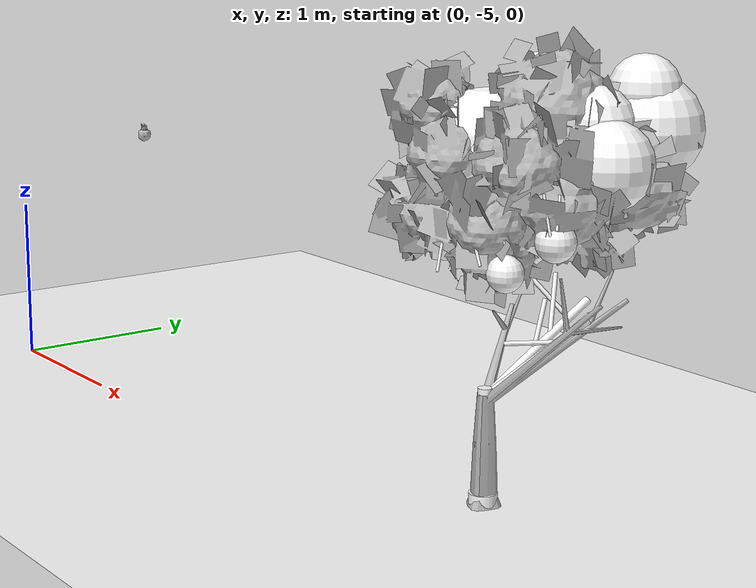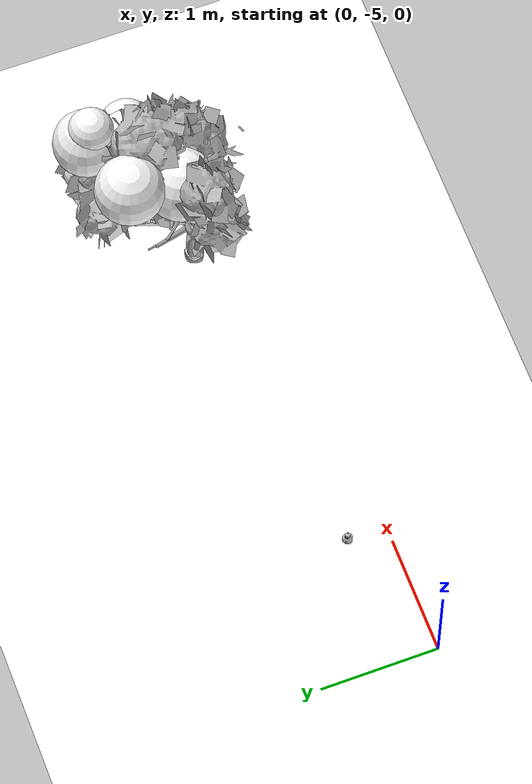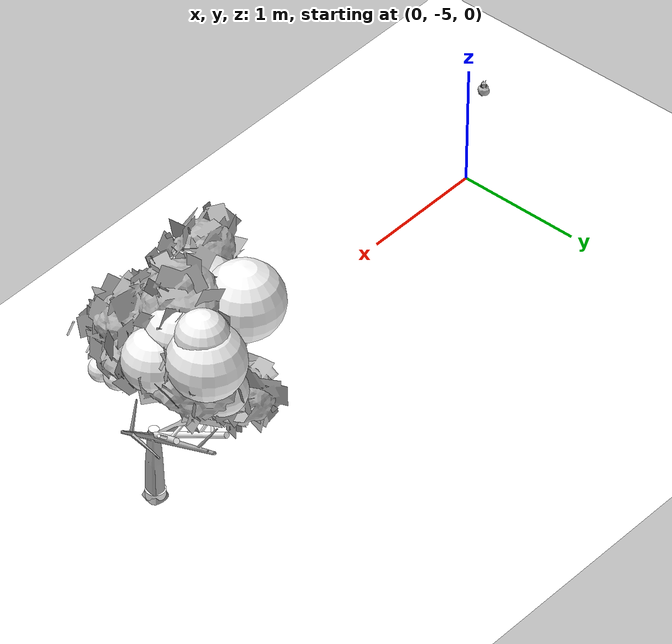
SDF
<sdf version="1.11">
 <world name="peach_orchard">
  <model name="ground">
   <static>true</static>
   <link name="link">
    <visual name="soil">
     <geometry><plane><normal>0 0 1</normal><size>32 22</size></plane></geometry>
     <material>
      <ambient>1 1 1 1</ambient>
      <diffuse>1 1 1 1</diffuse>
      <specular>0.1 0.1 0.1 1</specular>
      <pbr>
       <metal>
        <albedo_map>textures/soil_albedo.png</albedo_map>
        <normal_map type="tangent">textures/soil_normal.png</normal_map>
        <roughness>0.95</roughness>
        <metalness>0</metalness>
       </metal>
      </pbr>
     </material>
    </visual>
    <collision name="c_soil">
     <geometry><plane><normal>0 0 1</normal><size>32 22</size></plane></geometry>
    </collision>
   </link>
  </model>
  <model name="tree_r3_t1">
   <pose>4 -4.4 0 0 0 0</pose>
   <static>true</static>
   <link name="link">
    <visual name="tree_mesh">
     <pose>0 0 0 0 0 -0.274264</pose>
     <geometry>
      <mesh><uri>model://peach_sim/meshes/peach_tree_b.glb</uri><scale>1.02439 1.02439 1.02439</scale></mesh>
     </geometry>
    </visual>
    <visual name="trunk_0">
     <pose>0 0 0.171645 0 0 0</pose>
     <geometry><cylinder><radius>0.0518367</radius><length>0.343291</length></cylinder></geometry>
     <material>
      <ambient>1 1 1 1</ambient>
      <diffuse>1 1 1 1</diffuse>
      <specular>0.1 0.1 0.1 1</specular>
      <pbr>
       <metal>
        <albedo_map>textures/bark_albedo.png</albedo_map>
        <normal_map type="tangent">textures/bark_normal.png</normal_map>
        <roughness>0.9</roughness>
        <metalness>0</metalness>
       </metal>
      </pbr>
     </material>
    </visual>
    <collision name="c_trunk_0">
     <pose>0 0 0.171645 0 0 0</pose>
     <geometry><cylinder><radius>0.0518367</radius><length>0.343291</length></cylinder></geometry>
    </collision>
    <visual name="trunk_1">
     <pose>0 0 0.483728 0 0 0</pose>
     <geometry><cylinder><radius>0.0373225</radius><length>0.280874</length></cylinder></geometry>
     <material>
      <ambient>1 1 1 1</ambient>
      <diffuse>1 1 1 1</diffuse>
      <specular>0.1 0.1 0.1 1</specular>
      <pbr>
       <metal>
        <albedo_map>textures/bark_albedo.png</albedo_map>
        <normal_map type="tangent">textures/bark_normal.png</normal_map>
        <roughness>0.9</roughness>
        <metalness>0</metalness>
       </metal>
      </pbr>
     </material>
    </visual>
    <collision name="c_trunk_1">
     <pose>0 0 0.483728 0 0 0</pose>
     <geometry><cylinder><radius>0.0373225</radius><length>0.280874</length></cylinder></geometry>
    </collision>
    <visual name="root_flare">
     <pose>0 0 0.035 0 0 0</pose>
     <geometry><cylinder><radius>0.0751633</radius><length>0.07</length></cylinder></geometry>
     <material>
      <ambient>1 1 1 1</ambient>
      <diffuse>1 1 1 1</diffuse>
      <specular>0.1 0.1 0.1 1</specular>
      <pbr>
       <metal>
        <albedo_map>textures/bark_albedo.png</albedo_map>
        <normal_map type="tangent">textures/bark_normal.png</normal_map>
        <roughness>0.95</roughness>
        <metalness>0</metalness>
       </metal>
      </pbr>
     </material>
    </visual>
    <visual name="scaffold_0">
     <pose>0.00289766 0.339263 0.77872 0 1.02838 1.56226</pose>
     <geometry><cylinder><radius>0.022</radius><length>0.79227</length></cylinder></geometry>
     <material>
      <ambient>1 1 1 1</ambient>
      <diffuse>1 1 1 1</diffuse>
      <specular>0.1 0.1 0.1 1</specular>
      <pbr>
       <metal>
        <albedo_map>textures/bark_albedo.png</albedo_map>
        <normal_map type="tangent">textures/bark_normal.png</normal_map>
        <roughness>0.9</roughness>
        <metalness>0</metalness>
       </metal>
      </pbr>
     </material>
    </visual>
    <collision name="c_scaffold_0">
     <pose>0.00289766 0.339263 0.77872 0 1.02838 1.56226</pose>
     <geometry><cylinder><radius>0.022</radius><length>0.79227</length></cylinder></geometry>
    </collision>
    <visual name="branchlet_0_0">
     <pose>-0.0442807 0.482448 0.978648 0 0.469249 2.25915</pose>
     <geometry><cylinder><radius>0.012</radius><length>0.333502</length></cylinder></geometry>
     <material>
      <ambient>1 1 1 1</ambient>
      <diffuse>1 1 1 1</diffuse>
      <specular>0.1 0.1 0.1 1</specular>
      <pbr>
       <metal>
        <albedo_map>textures/bark_albedo.png</albedo_map>
        <normal_map type="tangent">textures/bark_normal.png</normal_map>
        <roughness>0.9</roughness>
        <metalness>0</metalness>
       </metal>
      </pbr>
     </material>
    </visual>
    <visual name="branchlet_0_1">
     <pose>-0.0696718 0.480406 1.01129 0 0.76341 -2.39416</pose>
     <geometry><cylinder><radius>0.012</radius><length>0.293297</length></cylinder></geometry>
     <material>
      <ambient>1 1 1 1</ambient>
      <diffuse>1 1 1 1</diffuse>
      <specular>0.1 0.1 0.1 1</specular>
      <pbr>
       <metal>
        <albedo_map>textures/bark_albedo.png</albedo_map>
        <normal_map type="tangent">textures/bark_normal.png</normal_map>
        <roughness>0.9</roughness>
        <metalness>0</metalness>
       </metal>
      </pbr>
     </material>
    </visual>
    <visual name="branchlet_0_2">
     <pose>-0.0208308 0.372808 0.88952 0 0.457532 1.96377</pose>
     <geometry><cylinder><radius>0.012</radius><length>0.278203</length></cylinder></geometry>
     <material>
      <ambient>1 1 1 1</ambient>
      <diffuse>1 1 1 1</diffuse>
      <specular>0.1 0.1 0.1 1</specular>
      <pbr>
       <metal>
        <albedo_map>textures/bark_albedo.png</albedo_map>
        <normal_map type="tangent">textures/bark_normal.png</normal_map>
        <roughness>0.9</roughness>
        <metalness>0</metalness>
       </metal>
      </pbr>
     </material>
    </visual>
    <visual name="scaffold_1">
     <pose>0.127383 0.225426 0.768518 0 0.927069 1.05645</pose>
     <geometry><cylinder><radius>0.022</radius><length>0.647427</length></cylinder></geometry>
     <material>
      <ambient>1 1 1 1</ambient>
      <diffuse>1 1 1 1</diffuse>
      <specular>0.1 0.1 0.1 1</specular>
      <pbr>
       <metal>
        <albedo_map>textures/bark_albedo.png</albedo_map>
        <normal_map type="tangent">textures/bark_normal.png</normal_map>
        <roughness>0.9</roughness>
        <metalness>0</metalness>
       </metal>
      </pbr>
     </material>
    </visual>
    <collision name="c_scaffold_1">
     <pose>0.127383 0.225426 0.768518 0 0.927069 1.05645</pose>
     <geometry><cylinder><radius>0.022</radius><length>0.647427</length></cylinder></geometry>
    </collision>
    <visual name="branchlet_1_0">
     <pose>0.032887 0.274121 0.821553 0 1.75925 -2.83323</pose>
     <geometry><cylinder><radius>0.012</radius><length>0.317949</length></cylinder></geometry>
     <material>
      <ambient>1 1 1 1</ambient>
      <diffuse>1 1 1 1</diffuse>
      <specular>0.1 0.1 0.1 1</specular>
      <pbr>
       <metal>
        <albedo_map>textures/bark_albedo.png</albedo_map>
        <normal_map type="tangent">textures/bark_normal.png</normal_map>
        <roughness>0.9</roughness>
        <metalness>0</metalness>
       </metal>
      </pbr>
     </material>
    </visual>
    <visual name="branchlet_1_1">
     <pose>0.250135 0.326126 0.918407 0 0.785515 0.467795</pose>
     <geometry><cylinder><radius>0.012</radius><length>0.292</length></cylinder></geometry>
     <material>
      <ambient>1 1 1 1</ambient>
      <diffuse>1 1 1 1</diffuse>
      <specular>0.1 0.1 0.1 1</specular>
      <pbr>
       <metal>
        <albedo_map>textures/bark_albedo.png</albedo_map>
        <normal_map type="tangent">textures/bark_normal.png</normal_map>
        <roughness>0.9</roughness>
        <metalness>0</metalness>
       </metal>
      </pbr>
     </material>
    </visual>
    <visual name="canopy_0">
     <pose>-0.256309 0.191579 1.79882 0 0 0</pose>
     <geometry><sphere><radius>0.302093</radius></sphere></geometry>
     <material>
      <ambient>1 1 1 1</ambient>
      <diffuse>1 1 1 1</diffuse>
      <specular>0.1 0.1 0.1 1</specular>
      <pbr>
       <metal>
        <albedo_map>textures/leaf_albedo.png</albedo_map>
        <normal_map type="tangent">textures/leaf_normal.png</normal_map>
        <roughness>0.85</roughness>
        <metalness>0</metalness>
       </metal>
      </pbr>
     </material>
    </visual>
    <collision name="c_canopy_0">
     <pose>-0.256309 0.191579 1.79882 0 0 0</pose>
     <geometry><sphere><radius>0.302093</radius></sphere></geometry>
    </collision>
    <visual name="canopy_1">
     <pose>-0.0439061 0.338773 1.60584 0 0 0</pose>
     <geometry><sphere><radius>0.196177</radius></sphere></geometry>
     <material>
      <ambient>1 1 1 1</ambient>
      <diffuse>1 1 1 1</diffuse>
      <specular>0.1 0.1 0.1 1</specular>
      <pbr>
       <metal>
        <albedo_map>textures/leaf_albedo.png</albedo_map>
        <normal_map type="tangent">textures/leaf_normal.png</normal_map>
        <roughness>0.85</roughness>
        <metalness>0</metalness>
       </metal>
      </pbr>
     </material>
    </visual>
    <collision name="c_canopy_1">
     <pose>-0.0439061 0.338773 1.60584 0 0 0</pose>
     <geometry><sphere><radius>0.196177</radius></sphere></geometry>
    </collision>
    <visual name="canopy_2">
     <pose>0.209014 0.445296 1.67812 0 0 0</pose>
     <geometry><sphere><radius>0.259806</radius></sphere></geometry>
     <material>
      <ambient>1 1 1 1</ambient>
      <diffuse>1 1 1 1</diffuse>
      <specular>0.1 0.1 0.1 1</specular>
      <pbr>
       <metal>
        <albedo_map>textures/leaf_albedo.png</albedo_map>
        <normal_map type="tangent">textures/leaf_normal.png</normal_map>
        <roughness>0.85</roughness>
        <metalness>0</metalness>
       </metal>
      </pbr>
     </material>
    </visual>
    <collision name="c_canopy_2">
     <pose>0.209014 0.445296 1.67812 0 0 0</pose>
     <geometry><sphere><radius>0.259806</radius></sphere></geometry>
    </collision>
    <visual name="canopy_3">
     <pose>0.233637 0.459366 1.928 0 0 0</pose>
     <geometry><sphere><radius>0.219301</radius></sphere></geometry>
     <material>
      <ambient>1 1 1 1</ambient>
      <diffuse>1 1 1 1</diffuse>
      <specular>0.1 0.1 0.1 1</specular>
      <pbr>
       <metal>
        <albedo_map>textures/leaf_albedo.png</albedo_map>
        <normal_map type="tangent">textures/leaf_normal.png</normal_map>
        <roughness>0.85</roughness>
        <metalness>0</metalness>
       </metal>
      </pbr>
     </material>
    </visual>
    <visual name="canopy_4">
     <pose>-0.254694 0.617698 1.97712 0 0 0</pose>
     <geometry><sphere><radius>0.285564</radius></sphere></geometry>
     <material>
      <ambient>1 1 1 1</ambient>
      <diffuse>1 1 1 1</diffuse>
      <specular>0.1 0.1 0.1 1</specular>
      <pbr>
       <metal>
        <albedo_map>textures/leaf_albedo.png</albedo_map>
        <normal_map type="tangent">textures/leaf_normal.png</normal_map>
        <roughness>0.85</roughness>
        <metalness>0</metalness>
       </metal>
      </pbr>
     </material>
    </visual>
    <visual name="canopy_5">
     <pose>-0.0750322 0.104665 1.57208 0 0 0</pose>
     <geometry><sphere><radius>0.213074</radius></sphere></geometry>
     <material>
      <ambient>1 1 1 1</ambient>
      <diffuse>1 1 1 1</diffuse>
      <specular>0.1 0.1 0.1 1</specular>
      <pbr>
       <metal>
        <albedo_map>textures/leaf_albedo.png</albedo_map>
        <normal_map type="tangent">textures/leaf_normal.png</normal_map>
        <roughness>0.85</roughness>
        <metalness>0</metalness>
       </metal>
      </pbr>
     </material>
    </visual>
    <visual name="canopy_6">
     <pose>0.293414 0.743755 2.09772 0 0 0</pose>
     <geometry><sphere><radius>0.186287</radius></sphere></geometry>
     <material>
      <ambient>1 1 1 1</ambient>
      <diffuse>1 1 1 1</diffuse>
      <specular>0.1 0.1 0.1 1</specular>
      <pbr>
       <metal>
        <albedo_map>textures/leaf_albedo.png</albedo_map>
        <normal_map type="tangent">textures/leaf_normal.png</normal_map>
        <roughness>0.85</roughness>
        <metalness>0</metalness>
       </metal>
      </pbr>
     </material>
    </visual>
    <visual name="canopy_7">
     <pose>0.401951 0.409758 1.76887 0 0 0</pose>
     <geometry><sphere><radius>0.228204</radius></sphere></geometry>
     <material>
      <ambient>1 1 1 1</ambient>
      <diffuse>1 1 1 1</diffuse>
      <specular>0.1 0.1 0.1 1</specular>
      <pbr>
       <metal>
        <albedo_map>textures/leaf_albedo.png</albedo_map>
        <normal_map type="tangent">textures/leaf_normal.png</normal_map>
        <roughness>0.85</roughness>
        <metalness>0</metalness>
       </metal>
      </pbr>
     </material>
    </visual>
    <visual name="canopy_8">
     <pose>-0.112048 0.178506 1.69558 0 0 0</pose>
     <geometry><sphere><radius>0.258392</radius></sphere></geometry>
     <material>
      <ambient>1 1 1 1</ambient>
      <diffuse>1 1 1 1</diffuse>
      <specular>0.1 0.1 0.1 1</specular>
      <pbr>
       <metal>
        <albedo_map>textures/leaf_albedo.png</albedo_map>
        <normal_map type="tangent">textures/leaf_normal.png</normal_map>
        <roughness>0.85</roughness>
        <metalness>0</metalness>
       </metal>
      </pbr>
     </material>
    </visual>
    <visual name="canopy_9">
     <pose>0.297923 0.782679 1.90813 0 0 0</pose>
     <geometry><sphere><radius>0.276196</radius></sphere></geometry>
     <material>
      <ambient>1 1 1 1</ambient>
      <diffuse>1 1 1 1</diffuse>
      <specular>0.1 0.1 0.1 1</specular>
      <pbr>
       <metal>
        <albedo_map>textures/leaf_albedo.png</albedo_map>
        <normal_map type="tangent">textures/leaf_normal.png</normal_map>
        <roughness>0.85</roughness>
        <metalness>0</metalness>
       </metal>
      </pbr>
     </material>
    </visual>
    <visual name="canopy_10">
     <pose>0.21302 0.827895 1.62863 0 0 0</pose>
     <geometry><sphere><radius>0.187573</radius></sphere></geometry>
     <material>
      <ambient>1 1 1 1</ambient>
      <diffuse>1 1 1 1</diffuse>
      <specular>0.1 0.1 0.1 1</specular>
      <pbr>
       <metal>
        <albedo_map>textures/leaf_albedo.png</albedo_map>
        <normal_map type="tangent">textures/leaf_normal.png</normal_map>
        <roughness>0.85</roughness>
        <metalness>0</metalness>
       </metal>
      </pbr>
     </material>
    </visual>
    <visual name="foliage_0">
     <pose>0.292851 0.172828 1.44235 0 0 0</pose>
     <geometry><sphere><radius>0.100819</radius></sphere></geometry>
     <material>
      <ambient>1 1 1 1</ambient>
      <diffuse>1 1 1 1</diffuse>
      <specular>0.1 0.1 0.1 1</specular>
      <pbr>
       <metal>
        <albedo_map>textures/leaf_albedo.png</albedo_map>
        <normal_map type="tangent">textures/leaf_normal.png</normal_map>
        <roughness>0.85</roughness>
        <metalness>0</metalness>
       </metal>
      </pbr>
     </material>
    </visual>
    <visual name="foliage_4">
     <pose>0.319777 -0.162363 1.29351 0 0 0</pose>
     <geometry><sphere><radius>0.0923238</radius></sphere></geometry>
     <material>
      <ambient>1 1 1 1</ambient>
      <diffuse>1 1 1 1</diffuse>
      <specular>0.1 0.1 0.1 1</specular>
      <pbr>
       <metal>
        <albedo_map>textures/leaf_albedo.png</albedo_map>
        <normal_map type="tangent">textures/leaf_normal.png</normal_map>
        <roughness>0.85</roughness>
        <metalness>0</metalness>
       </metal>
      </pbr>
     </material>
    </visual>
    <visual name="foliage_8">
     <pose>0.405764 0.0756243 1.43289 0 0 0</pose>
     <geometry><sphere><radius>0.102441</radius></sphere></geometry>
     <material>
      <ambient>1 1 1 1</ambient>
      <diffuse>1 1 1 1</diffuse>
      <specular>0.1 0.1 0.1 1</specular>
      <pbr>
       <metal>
        <albedo_map>textures/leaf_albedo.png</albedo_map>
        <normal_map type="tangent">textures/leaf_normal.png</normal_map>
        <roughness>0.85</roughness>
        <metalness>0</metalness>
       </metal>
      </pbr>
     </material>
    </visual>
    <visual name="twig_0">
     <pose>0.205774 0.106351 1.49683 0 0.663417 2.88604</pose>
     <geometry><cylinder><radius>0.007</radius><length>0.124763</length></cylinder></geometry>
     <material>
      <ambient>1 1 1 1</ambient>
      <diffuse>1 1 1 1</diffuse>
      <specular>0.1 0.1 0.1 1</specular>
      <pbr>
       <metal>
        <albedo_map>textures/bark_albedo.png</albedo_map>
        <normal_map type="tangent">textures/bark_normal.png</normal_map>
        <roughness>0.9</roughness>
        <metalness>0</metalness>
       </metal>
      </pbr>
     </material>
    </visual>
    <visual name="twig_1">
     <pose>0.214461 0.266923 1.56384 0 0.302849 2.27051</pose>
     <geometry><cylinder><radius>0.007</radius><length>0.131819</length></cylinder></geometry>
     <material>
      <ambient>1 1 1 1</ambient>
      <diffuse>1 1 1 1</diffuse>
      <specular>0.1 0.1 0.1 1</specular>
      <pbr>
       <metal>
        <albedo_map>textures/bark_albedo.png</albedo_map>
        <normal_map type="tangent">textures/bark_normal.png</normal_map>
        <roughness>0.9</roughness>
        <metalness>0</metalness>
       </metal>
      </pbr>
     </material>
    </visual>
    <visual name="twig_2">
     <pose>0.184167 0.33763 1.5554 0 0.497607 2.74283</pose>
     <geometry><cylinder><radius>0.007</radius><length>0.118496</length></cylinder></geometry>
     <material>
      <ambient>1 1 1 1</ambient>
      <diffuse>1 1 1 1</diffuse>
      <specular>0.1 0.1 0.1 1</specular>
      <pbr>
       <metal>
        <albedo_map>textures/bark_albedo.png</albedo_map>
        <normal_map type="tangent">textures/bark_normal.png</normal_map>
        <roughness>0.9</roughness>
        <metalness>0</metalness>
       </metal>
      </pbr>
     </material>
    </visual>
    <visual name="twig_3">
     <pose>0.167816 0.442507 1.57155 0 0.519638 2.70865</pose>
     <geometry><cylinder><radius>0.007</radius><length>0.160114</length></cylinder></geometry>
     <material>
      <ambient>1 1 1 1</ambient>
      <diffuse>1 1 1 1</diffuse>
      <specular>0.1 0.1 0.1 1</specular>
      <pbr>
       <metal>
        <albedo_map>textures/bark_albedo.png</albedo_map>
        <normal_map type="tangent">textures/bark_normal.png</normal_map>
        <roughness>0.9</roughness>
        <metalness>0</metalness>
       </metal>
      </pbr>
     </material>
    </visual>
    <visual name="twig_4">
     <pose>0.307032 -0.205042 1.51033 0 0.549772 -2.73981</pose>
     <geometry><cylinder><radius>0.007</radius><length>0.180641</length></cylinder></geometry>
     <material>
      <ambient>1 1 1 1</ambient>
      <diffuse>1 1 1 1</diffuse>
      <specular>0.1 0.1 0.1 1</specular>
      <pbr>
       <metal>
        <albedo_map>textures/bark_albedo.png</albedo_map>
        <normal_map type="tangent">textures/bark_normal.png</normal_map>
        <roughness>0.9</roughness>
        <metalness>0</metalness>
       </metal>
      </pbr>
     </material>
    </visual>
    <visual name="twig_5">
     <pose>0.267612 -0.298167 1.40899 0 0.594464 2.88743</pose>
     <geometry><cylinder><radius>0.007</radius><length>0.151281</length></cylinder></geometry>
     <material>
      <ambient>1 1 1 1</ambient>
      <diffuse>1 1 1 1</diffuse>
      <specular>0.1 0.1 0.1 1</specular>
      <pbr>
       <metal>
        <albedo_map>textures/bark_albedo.png</albedo_map>
        <normal_map type="tangent">textures/bark_normal.png</normal_map>
        <roughness>0.9</roughness>
        <metalness>0</metalness>
       </metal>
      </pbr>
     </material>
    </visual>
    <visual name="twig_6">
     <pose>0.251007 -0.506691 1.40582 0 0.343851 2.01015</pose>
     <geometry><cylinder><radius>0.007</radius><length>0.136682</length></cylinder></geometry>
     <material>
      <ambient>1 1 1 1</ambient>
      <diffuse>1 1 1 1</diffuse>
      <specular>0.1 0.1 0.1 1</specular>
      <pbr>
       <metal>
        <albedo_map>textures/bark_albedo.png</albedo_map>
        <normal_map type="tangent">textures/bark_normal.png</normal_map>
        <roughness>0.9</roughness>
        <metalness>0</metalness>
       </metal>
      </pbr>
     </material>
    </visual>
    <visual name="twig_7">
     <pose>0.44589 -0.0214821 1.58144 0 0.224805 -2.96281</pose>
     <geometry><cylinder><radius>0.007</radius><length>0.203871</length></cylinder></geometry>
     <material>
      <ambient>1 1 1 1</ambient>
      <diffuse>1 1 1 1</diffuse>
      <specular>0.1 0.1 0.1 1</specular>
      <pbr>
       <metal>
        <albedo_map>textures/bark_albedo.png</albedo_map>
        <normal_map type="tangent">textures/bark_normal.png</normal_map>
        <roughness>0.9</roughness>
        <metalness>0</metalness>
       </metal>
      </pbr>
     </material>
    </visual>
    <visual name="twig_8">
     <pose>0.47425 0.0242874 1.59097 0 0.281735 2.21502</pose>
     <geometry><cylinder><radius>0.007</radius><length>0.17044</length></cylinder></geometry>
     <material>
      <ambient>1 1 1 1</ambient>
      <diffuse>1 1 1 1</diffuse>
      <specular>0.1 0.1 0.1 1</specular>
      <pbr>
       <metal>
        <albedo_map>textures/bark_albedo.png</albedo_map>
        <normal_map type="tangent">textures/bark_normal.png</normal_map>
        <roughness>0.9</roughness>
        <metalness>0</metalness>
       </metal>
      </pbr>
     </material>
    </visual>
    <visual name="twig_9">
     <pose>0.503217 0.0903975 1.56831 0 0.278915 -2.61307</pose>
     <geometry><cylinder><radius>0.007</radius><length>0.126308</length></cylinder></geometry>
     <material>
      <ambient>1 1 1 1</ambient>
      <diffuse>1 1 1 1</diffuse>
      <specular>0.1 0.1 0.1 1</specular>
      <pbr>
       <metal>
        <albedo_map>textures/bark_albedo.png</albedo_map>
        <normal_map type="tangent">textures/bark_normal.png</normal_map>
        <roughness>0.9</roughness>
        <metalness>0</metalness>
       </metal>
      </pbr>
     </material>
    </visual>
   </link>
  </model>
  <model name="peach_tree_r2_t1_00">
   <pose>0.55 -4.40365 1.45 0 0.0213078 -0.628433</pose>
   <static>true</static>
   <link name="bag">
    <visual name="bag_mesh">
     <pose>0 0 0.0468047 0 0 -0</pose>
     <geometry>
      <mesh><uri>model://peach_sim/meshes/bagged_peach.glb</uri><scale>0.982187 1.18294 1.06374</scale></mesh>
     </geometry>
    </visual>
    <visual name="body">
     <pose>0 0 0.0288047 0 0 0</pose>
     <geometry><ellipsoid><radii>0.036832 0.0307564 0.031109</radii></ellipsoid></geometry>
     <material>
      <ambient>1 1 1 1</ambient>
      <diffuse>1 1 1 1</diffuse>
      <specular>0.1 0.1 0.1 1</specular>
      <pbr>
       <metal>
        <albedo_map>textures/paper_bag_albedo.png</albedo_map>
        <normal_map type="tangent">textures/paper_bag_normal.png</normal_map>
        <roughness>0.72</roughness>
        <metalness>0</metalness>
       </metal>
      </pbr>
     </material>
    </visual>
    <visual name="bottom_fold">
     <pose>0 0 0.012 0 0 0.35</pose>
     <geometry><box><size>0.0570896 0.0353698 0.022</size></box></geometry>
     <material>
      <ambient>1 1 1 1</ambient>
      <diffuse>1 1 1 1</diffuse>
      <specular>0.1 0.1 0.1 1</specular>
      <pbr>
       <metal>
        <albedo_map>textures/paper_bag_albedo.png</albedo_map>
        <normal_map type="tangent">textures/paper_bag_normal.png</normal_map>
        <roughness>0.8</roughness>
        <metalness>0</metalness>
       </metal>
      </pbr>
     </material>
    </visual>
    <visual name="fruit">
     <pose>0 0 0.0207696 0 0 0</pose>
     <geometry><sphere><radius>0.0278404</radius></sphere></geometry>
     <material>
      <ambient>1 1 1 1</ambient>
      <diffuse>1 1 1 1</diffuse>
      <specular>0.1 0.1 0.1 1</specular>
      <pbr>
       <metal>
        <albedo_map>textures/fruit_skin_albedo.png</albedo_map>
        <normal_map type="tangent">textures/fruit_skin_normal.png</normal_map>
        <roughness>0.55</roughness>
        <metalness>0</metalness>
       </metal>
      </pbr>
     </material>
    </visual>
    <visual name="neck">
     <pose>0 0 0.0666093 0 0 0</pose>
     <geometry><cylinder><radius>0.013</radius><length>0.018</length></cylinder></geometry>
     <material>
      <ambient>1 1 1 1</ambient>
      <diffuse>1 1 1 1</diffuse>
      <specular>0.1 0.1 0.1 1</specular>
      <pbr>
       <metal>
        <albedo_map>textures/paper_bag_albedo.png</albedo_map>
        <normal_map type="tangent">textures/paper_bag_normal.png</normal_map>
        <roughness>0.75</roughness>
        <metalness>0</metalness>
       </metal>
      </pbr>
     </material>
    </visual>
    <visual name="gather">
     <pose>0 0 0.0476093 0 0 0</pose>
     <geometry><cylinder><radius>0.019</radius><length>0.02</length></cylinder></geometry>
     <material>
      <ambient>1 1 1 1</ambient>
      <diffuse>1 1 1 1</diffuse>
      <specular>0.1 0.1 0.1 1</specular>
      <pbr>
       <metal>
        <albedo_map>textures/paper_bag_albedo.png</albedo_map>
        <normal_map type="tangent">textures/paper_bag_normal.png</normal_map>
        <roughness>0.8</roughness>
        <metalness>0</metalness>
       </metal>
      </pbr>
     </material>
    </visual>
    <visual name="inner_paper">
     <pose>0 0 0.0716093 0 0 0</pose>
     <geometry><cylinder><radius>0.01</radius><length>0.008</length></cylinder></geometry>
     <material>
      <ambient>0.180392 0.14902 0.133333 1</ambient>
      <diffuse>0.180392 0.14902 0.133333 1</diffuse>
      <specular>0.1 0.1 0.1 1</specular>
     </material>
    </visual>
    <visual name="wire_0">
     <pose>0 0 0.0616093 0 0 0</pose>
     <geometry><cylinder><radius>0.0205</radius><length>0.0035</length></cylinder></geometry>
     <material>
      <ambient>0.25 0.25 0.25 1</ambient>
      <diffuse>0.25 0.25 0.25 1</diffuse>
      <specular>0.1 0.1 0.1 1</specular>
     </material>
    </visual>
    <visual name="wire_1">
     <pose>0 0 0.0686093 0 0 0</pose>
     <geometry><cylinder><radius>0.0205</radius><length>0.0035</length></cylinder></geometry>
     <material>
      <ambient>0.25 0.25 0.25 1</ambient>
      <diffuse>0.25 0.25 0.25 1</diffuse>
      <specular>0.1 0.1 0.1 1</specular>
     </material>
    </visual>
    <visual name="wire_tail">
     <pose>0.01 0 0.0696093 0 0.521618 0</pose>
     <geometry><cylinder><radius>0.0012</radius><length>0.026</length></cylinder></geometry>
     <material>
      <ambient>0.25 0.25 0.25 1</ambient>
      <diffuse>0.25 0.25 0.25 1</diffuse>
      <specular>0.1 0.1 0.1 1</specular>
     </material>
    </visual>
    <collision name="c_body">
     <pose>0 0 0.0288047 0 0 0</pose>
     <geometry><cylinder><radius>0.036832</radius><length>0.0576093</length></cylinder></geometry>
    </collision>
   </link>
  </model>
 </world>
</sdf>
